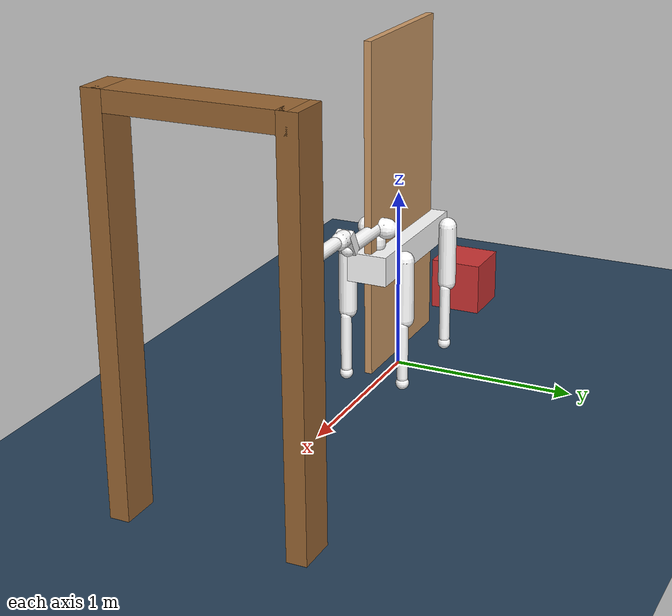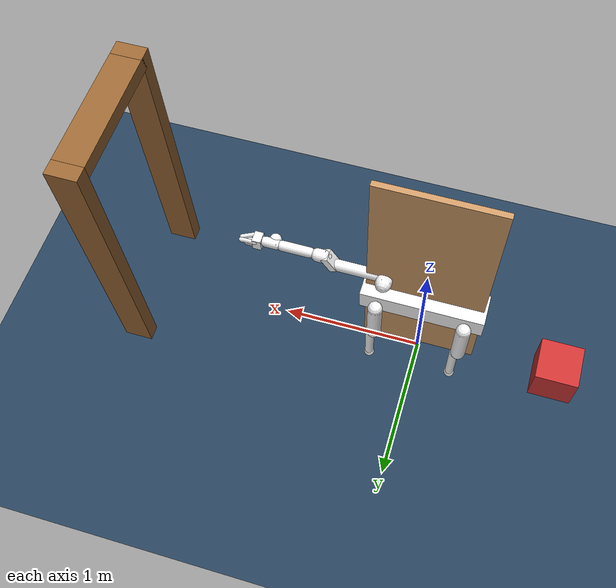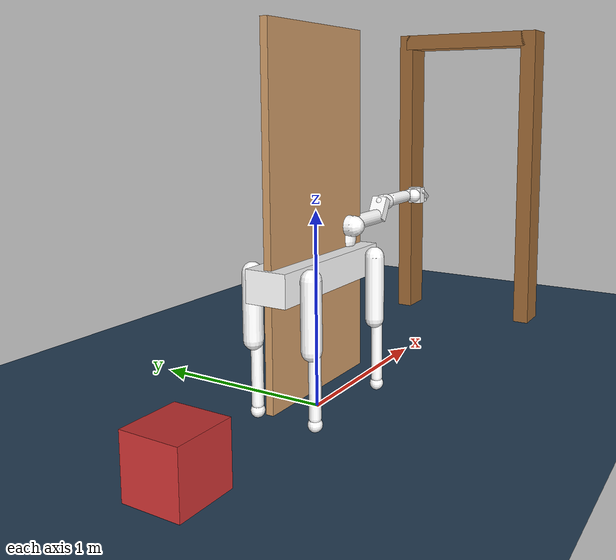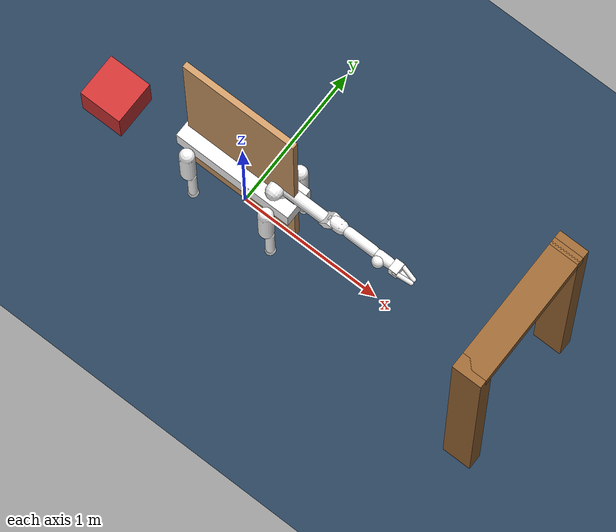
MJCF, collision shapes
<mujoco model="spot_locomotion">
<!-- Copyright (c) 2024 Boston Dynamics AI Institute LLC. All rights reserved. -->
  <include file="spot_components/params_and_default_locomotion.xml" />
  <include file="spot_components/assets_locomotion.xml" />

  <worldbody>
    <geom name="ground" type="plane" size="10 10 0.01" friction="0.8" priority="5" material="blue_grid"/>

    <!-- Door frame -->
    <geom name="door_frame_left" type="box" size="0.1 0.05 1.0" pos="2.0 -0.45 1.0" rgba="0.6 0.4 0.2 1"/>
    <geom name="door_frame_right" type="box" size="0.1 0.05 1.0" pos="2.0 0.45 1.0" rgba="0.6 0.4 0.2 1"/>
    <geom name="door_frame_top" type="box" size="0.1 0.45 0.05" pos="2.0 0 1.95" rgba="0.6 0.4 0.2 1"/>

    <body name="body" pos="0 0 0.7">
      <joint name="base" type="free"/>
      <inertial mass="16.70765207" pos="0 0 -0.00496172" fullinertia="0.081543792 0.549231154 0.569454373 0 0 0"/>
      <geom name="body_0_visual" class="visual" mesh="body_0_visual" material="black"/>
      <geom name="body_1_visual" class="visual" mesh="body_1_visual" material="yellow"/>
      <geom name="body" class="collision" type="box" size="0.42 0.11 0.08"/>
      <site name="site_body" pos="0 0 0.3" size="0.01"/>

      <include file="spot_components/legs_locomotion.xml" />
      <include file="spot_components/arm_locomotion.xml" />
    </body>

    <body name="door" pos="0 0 1">
      <!-- Hinge joint at the edge of the door with spring force toward closed position -->
      <joint name="door_hinge" type="hinge" pos="-0.4 0 0" axis="0 0 1"
             range="-120 120" damping="1" stiffness="5.0" springref="0"/>

      <!-- Inertial properties for the door -->
      <inertial mass="5.0" pos="0 0 0" fullinertia="0.1 1.0 1.0 0 0 0"/>

      <!-- Door geometry - positioned so rotation point is at the edge -->
      <geom name="door_panel" type="box" size="0.4 0.02 0.9"
            pos="0 0 0" rgba="0.8 0.6 0.4 1"/>

    </body>

    <!-- Small pushable box -->
    <body name="box" pos="-1.0 0 0.15">
      <joint name="box_free" type="free"/>
      <inertial mass="2.0" pos="0 0 0" fullinertia="0.05 0.05 0.05 0 0 0"/>
      <geom name="box_geom" type="box" size="0.15 0.15 0.15" rgba="0.8 0.2 0.2 1"/>
    </body>

  </worldbody>

  <include file="spot_components/actuators_sensors_position_control.xml" />
  <include file="spot_components/contact.xml" />

</mujoco>

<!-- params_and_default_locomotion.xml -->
<mujoco model="spot_default">
<!-- Copyright (c) 2023 Robotics and AI Institute LLC dba RAI Institute. All rights reserved. -->

  <compiler angle="radian" assetdir="../../../meshes/spot/" autolimits="true"/>

  <option timestep="0.01" solver="Newton" integrator="implicitfast" density="1">
    <!-- iterations="5" ls_iterations="10" -->
  </option>

  <default>
    <default class="visual">
      <geom type="mesh" contype="0" conaffinity="0" group="2"/>
    </default>
    <default class="collision">
      <geom group="3" friction="0.15" priority="4" rgba="1 1 1 1">
      </geom>
    </default>
    <default class="corner_contact">
      <geom type="sphere" size="1e-7" friction="0.5" priority="3"/>
    </default>

    <default class="base">
      <joint damping="30" range="-3 3"/>
      <position kp="300" ctrlrange="-3 3" forcerange="-1000 1000"/>
    </default>
    <!-- The arm damping is higher than the damping gains in spot-sim, because actual joint damping is unknown -->
    <default class="arm">
      <default class="arm_sh0">
        <joint damping="51.0" range="-2.61799387799149441136 3.14159265358979311599"/>
        <position kp="120" ctrlrange="-2.61799387799149441136 3.14159265358979311599" forcerange="-90.9 90.0"/>
      </default>
      <default class="arm_sh1">
        <joint damping="76.5" range="-3.14159265358979311599 0.52359877559829881565"/>
        <position kp="120" ctrlrange="-3.14159265358979311599 0.52359877559829881565" forcerange="-181.8 181.8"/>
      </default>
      <default class="arm_el0">
        <joint damping="51.0" range="0 3.14159265358979311599"/>
        <position kp="120" ctrlrange="0 3.14159265358979311599" forcerange="-90.9 90.0"/>
      </default>
      <default class="arm_el1">
        <joint damping="10.2" range="-2.79252680319092716487 2.79252680319092716487"/>
        <position kp="120" ctrlrange="-2.79252680319092716487 2.79252680319092716487" forcerange="-30.3 30.3"/>
      </default>
      <default class="arm_wr0">
        <joint damping="10.2" range="-1.83259571459404613236 1.83259571459404613236"/>
        <position kp="120" ctrlrange="-1.83259571459404613236 1.83259571459404613236" forcerange="-30.9 30.0"/>
      </default>
      <default class="arm_wr1">
        <joint damping="10.2" range="-2.87979326579064354163 2.87979326579064354163"/>
        <position kp="120" ctrlrange="-2.87979326579064354163 2.87979326579064354163" forcerange="-30.9 30.0"/>
      </default>
      <default class="arm_f1x">
        <joint damping="1.6" range="-1.57 0"/>
        <position kp="16.0" ctrlrange="-1.57 0" forcerange="-15.32 15.32"/>
      </default>
    </default>

    <!-- TODO find correct value for actuators -->
    <default class="leg">
      <default class="hip_x">
        <joint range="-0.785398 0.785398"/>
        <position kp="60" kv="1.5" ctrlrange="-0.785398 0.785398" forcerange="-45 45"/>
      </default>
      <default class="hip_y">
        <joint range="-0.898845 2.29511"/>
        <position kp="60" kv="1.5" ctrlrange="-0.898845 2.29511" forcerange="-45 45"/>
      </default>
      <default class="knee">
        <joint range="-2.7929 -0.2471"/>
        <position kp="60" kv="1.5" ctrlrange="-2.7929 -0.2471" forcerange="-115 115"/>
      </default>
    </default>

  </default>
</mujoco>

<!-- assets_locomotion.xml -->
<mujoco model="spot_assets">
<!-- Copyright (c) 2023 Robotics and AI Institute LLC dba RAI Institute. All rights reserved. -->
  <asset>
    <texture name="blue_grid" type="2d" builtin="checker" rgb1="0.2 0.3 0.4" rgb2="0.1 0.2 0.3" width="300" height="300" mark="edge" markrgb="0.8 0.8 0.8"/>
    <material name="blue_grid" texture="blue_grid" texrepeat="5 5" texuniform="true" reflectance=".2"/>

    <material name="black" rgba="0.2 0.2 0.2 1"/>
    <material name="yellow" rgba="1 0.8 0.03 1"/>
    <texture name="bdai_texture" type="2d" file="../../meshes/spot/bdaii_spot_wrap.png"/>
    <material name="bdai" texture="bdai_texture" specular="1" shininess="11"/>
    <material name="object" rgba=".7 .5 .3 1"/>

    <texture name="chess_texture" type="2d" builtin="checker" width="1024" height="1024" rgb1="1.0 0.27 0.1" rgb2="1.0 0.84 0.0"/>
    <material name="chess_material" texture="chess_texture"/>

    <mesh name="body" file="../../meshes/spot/base/collision/body_collision.obj"/>

    <mesh name="left_upper_leg_collision" file="../../meshes/spot/base/collision/left_upper_leg_collision.obj"/>
    <mesh name="left_lower_leg_collision" file="../../meshes/spot/base/collision/left_lower_leg_collision.obj"/>
    <mesh name="right_upper_leg_collision" file="../../meshes/spot/base/collision/right_upper_leg_collision.obj"/>
    <mesh name="right_lower_leg_collision" file="../../meshes/spot/base/collision/right_lower_leg_collision.obj"/>

    <mesh name="arm_link_sh0_base" file="../../meshes/spot/arm/collision/arm_link_sh0_base.obj"/>
    <mesh name="arm_link_sh0_left_motor" file="../../meshes/spot/arm/collision/arm_link_sh0_left_motor.obj"/>
    <mesh name="arm_link_sh0_right_motor" file="../../meshes/spot/arm/collision/arm_link_sh0_right_motor.obj"/>
    <mesh name="arm_link_sh1" file="../../meshes/spot/arm/collision/arm_link_sh1.obj"/>
    <mesh name="arm_link_el0" file="../../meshes/spot/arm/collision/arm_link_el0.obj"/>
    <mesh name="arm_link_el1" file="../../meshes/spot/arm/collision/arm_link_el1_main.obj"/>
    <mesh name="arm_link_el1_main" file="../../meshes/spot/arm/collision/arm_link_el1_main.obj"/>
    <mesh name="arm_link_el1_lip" file="../../meshes/spot/arm/collision/arm_link_el1_lip.obj"/>
    <mesh name="arm_link_wr0" file="../../meshes/spot/arm/collision/arm_link_wr0.obj"/>
    <mesh name="arm_link_wr1" file="../../meshes/spot/arm/collision/arm_link_wr1.obj"/>

    <mesh name="left_hinge" file="../../meshes/spot/gripper/collision/left_hinge.obj"/>
    <mesh name="left_finger" file="../../meshes/spot/gripper/collision/left_finger.obj"/>
    <mesh name="left_tooth" file="../../meshes/spot/gripper/collision/left_tooth.obj"/>
    <mesh name="right_hinge" file="../../meshes/spot/gripper/collision/right_hinge.obj"/>
    <mesh name="right_finger" file="../../meshes/spot/gripper/collision/right_finger.obj"/>
    <mesh name="right_tooth" file="../../meshes/spot/gripper/collision/right_tooth.obj"/>
    <mesh name="front_jaw" file="../../meshes/spot/gripper/collision/front_jaw.obj"/>
    <mesh name="middle_jaw" file="../../meshes/spot/gripper/collision/middle_jaw.obj"/>
    <mesh name="jaw_tooth" file="../../meshes/spot/gripper/collision/jaw_tooth.obj"/>

    <mesh name="body_0_visual" file="../../meshes/spot/base/visual/body_0.obj"/>
    <mesh name="body_1_visual" file="../../meshes/spot/base/visual/body_1.obj"/>

    <mesh name="front_left_hip_visual" file="../../meshes/spot/base/visual/front_left_hip.obj"/>
    <mesh name="front_left_lower_leg_visual" file="../../meshes/spot/base/visual/front_left_lower_leg.obj"/>
    <mesh name="front_left_upper_leg_0_visual" file="../../meshes/spot/base/visual/front_left_upper_leg_0.obj"/>
    <mesh name="front_left_upper_leg_1_visual" file="../../meshes/spot/base/visual/front_left_upper_leg_1.obj"/>

    <mesh name="front_right_hip_visual" file="../../meshes/spot/base/visual/front_right_hip.obj"/>
    <mesh name="front_right_lower_leg_visual" file="../../meshes/spot/base/visual/front_right_lower_leg.obj"/>
    <mesh name="front_right_upper_leg_0_visual" file="../../meshes/spot/base/visual/front_right_upper_leg_0.obj"/>
    <mesh name="front_right_upper_leg_1_visual" file="../../meshes/spot/base/visual/front_right_upper_leg_1.obj"/>

    <mesh name="rear_left_hip_visual" file="../../meshes/spot/base/visual/rear_left_hip.obj"/>
    <mesh name="rear_left_lower_leg_visual" file="../../meshes/spot/base/visual/rear_left_lower_leg.obj"/>
    <mesh name="rear_left_upper_leg_0_visual" file="../../meshes/spot/base/visual/rear_left_upper_leg_0.obj"/>
    <mesh name="rear_left_upper_leg_1_visual" file="../../meshes/spot/base/visual/rear_left_upper_leg_1.obj"/>

    <mesh name="rear_right_hip_visual" file="../../meshes/spot/base/visual/rear_right_hip.obj"/>
    <mesh name="rear_right_lower_leg_visual" file="../../meshes/spot/base/visual/rear_right_lower_leg.obj"/>
    <mesh name="rear_right_upper_leg_0_visual" file="../../meshes/spot/base/visual/rear_right_upper_leg_0.obj"/>
    <mesh name="rear_right_upper_leg_1_visual" file="../../meshes/spot/base/visual/rear_right_upper_leg_1.obj"/>

    <mesh name="arm_link_sh0_visual" file="../../meshes/spot/arm/visual/arm_link_sh0.obj"/>
    <mesh name="arm_link_sh1_0_visual" file="../../meshes/spot/arm/visual/arm_link_sh1_0.obj"/>
    <mesh name="arm_link_sh1_1_visual" file="../../meshes/spot/arm/visual/arm_link_sh1_1.obj"/>
    <mesh name="arm_link_el0_visual" file="../../meshes/spot/arm/visual/arm_link_el0.obj"/>
    <mesh name="arm_link_el1_0_visual" file="../../meshes/spot/arm/visual/arm_link_el1_0.obj"/>
    <mesh name="arm_link_el1_1_visual" file="../../meshes/spot/arm/visual/arm_link_el1_1.obj"/>
    <mesh name="arm_link_wr0_0_visual" file="../../meshes/spot/arm/visual/arm_link_wr0_0.obj"/>
    <mesh name="arm_link_wr0_1_visual" file="../../meshes/spot/arm/visual/arm_link_wr0_1.obj"/>
    <mesh name="arm_link_wr1_0_visual" file="../../meshes/spot/arm/visual/arm_link_wr1_0.obj"/>
    <mesh name="arm_link_wr1_1_visual" file="../../meshes/spot/arm/visual/arm_link_wr1_1.obj"/>
    <mesh name="arm_link_fngr_0_visual" file="../../meshes/spot/gripper/visual/arm_link_fngr_0.obj"/>
    <mesh name="arm_link_fngr_1_visual" file="../../meshes/spot/gripper/visual/arm_link_fngr_1.obj"/>
  </asset>
</mujoco>

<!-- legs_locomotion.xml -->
<mujoco model="spot_legs">
<!-- Copyright (c) 2023 Robotics and AI Institute LLC dba RAI Institute. All rights reserved. -->
    <body name="front_left_hip" pos="0.29785 0.055 0">
        <inertial pos="-0.01586739 0.00855842 0.00000903" mass="1.13688339" fullinertia="0.00122166 0.00158957 0.00172903 -0.00017754 0.00000043 -0.00000049"/>
        <joint name="joint_front_left_hip_x" class="hip_x" pos="0 0 0" axis="1 0 0" range="-0.785398 0.785398"/>
        <geom name="front_left_hip_visual" class="visual" mesh="front_left_hip_visual" material="black"/>
        <body name="front_left_upper_leg" pos="0 0.110945 0">
            <inertial pos="0.00214442 -0.01110184 -0.07881204" mass="2.25620359" fullinertia="0.02692501 0.02583907 0.00318737 -0.00008782 0.00054873 0.00207146"/>
            <joint name="joint_front_left_hip_y" class="hip_y" pos="0 0 0" axis="0 1 0" range="-0.898845 2.295108"/>
            <geom name="front_left_upper_leg_0_visual" class="visual" mesh="front_left_upper_leg_0_visual" material="yellow"/>
            <geom name="front_left_upper_leg_1_visual" class="visual" mesh="front_left_upper_leg_1_visual" material="black"/>
            <geom name="front_left_upper_leg_main" class="collision" type="capsule" size="0.05 0.165" pos="0 0 -0.13"/>
            <body name="front_left_lower_leg" pos="0.025 0 -0.3205">
                <inertial pos="0.00597360 0.0 -0.17466427" mass="0.33" fullinertia="0.00701356 0.00709946 0.00014529 0 0.00006600 0"/>
                <joint name="joint_front_left_knee" class="knee" pos="0 0 0" axis="0 1 0" range="-2.7929 -0.2471"/>
                <geom name="front_left_lower_leg_visual" class="visual" mesh="front_left_lower_leg_visual" material="black"/>
                <geom name="front_left_lower_leg_main" class="collision" type="capsule" size="0.03 0.15" pos="0 0 -0.155"/>
                <geom name="front_left_foot" class="collision" type="sphere" size="0.036" pos="0 0 -0.3365"/>
                <site name="site_front_left" pos="0 0 -0.3365" size="0.01"/>
            </body>
        </body>
    </body>

    <body name="front_right_hip" pos="0.29785 -0.055 0">
        <inertial pos="-0.01586739 -0.00855842 0.00000903" mass="1.13688339" fullinertia="0.00122166 0.00158957 0.00172903 0.00017754 0.00000043 0.00000049"/>
        <joint name="joint_front_right_hip_x" class="hip_x" pos="0 0 0" axis="1 0 0" range="-0.785398 0.785398"/>
        <geom name="front_right_hip_visual" class="visual" mesh="front_right_hip_visual" material="black"/>
        <body name="front_right_upper_leg" pos="0 -0.110945 0">
            <inertial pos="0.00214442 0.01110184 -0.07881204" mass="2.25620359" fullinertia="0.02692501 0.02583907 0.00318737 0.00008782 0.00054873 -0.00207146"/>
            <joint name="joint_front_right_hip_y" class="hip_y" pos="0 0 0" axis="0 1 0" range="-0.898845 2.295108"/>
            <geom name="front_right_upper_leg_0_visual" class="visual" mesh="front_right_upper_leg_0_visual" material="yellow"/>
            <geom name="front_right_upper_leg_1_visual" class="visual" mesh="front_right_upper_leg_1_visual" material="black"/>
            <geom name="front_right_upper_leg_main" class="collision" type="capsule" size="0.05 0.165" pos="0 0 -0.13"/>
            <body name="front_right_lower_leg" pos="0.025 0 -0.3205">
                <inertial pos="0.00597360 0.0 -0.17466427" mass="0.33" fullinertia="0.00701356 0.00709946 0.00014529 0 0.00006600 0"/>
                <joint name="joint_front_right_knee" class="knee" pos="0 0 0" axis="0 1 0" range="-2.7929 -0.2471"/>
                <geom name="front_right_lower_leg_visual" class="visual" mesh="front_right_lower_leg_visual" material="black"/>
                <geom name="front_right_lower_leg_main" class="collision" type="capsule" size="0.03 0.15" pos="0 0 -0.155"/>
                <geom name="front_right_foot" class="collision" type="sphere" size="0.036" pos="0 0 -0.3365"/>
                <site name="site_front_right" pos="0 0 -0.3365" size="0.01"/>
            </body>
        </body>
    </body>

    <body name="rear_left_hip" pos="-0.29785 0.055 0">
        <inertial pos="0.01586739 0.00855842 0.00000903" mass="1.13688339" fullinertia="0.00122166 0.00158957 0.00172903 0.00017754 -0.00000043 -0.00000049"/>
        <joint name="joint_rear_left_hip_x" class="hip_x" pos="0 0 0" axis="1 0 0" range="-0.785398 0.785398"/>
        <geom name="rear_left_hip_visual" class="visual" mesh="rear_left_hip_visual" material="black"/>
        <body name="rear_left_upper_leg" pos="0 0.110945 0">
            <inertial pos="0.00214442 -0.01110184 -0.07881204" mass="2.25620359" fullinertia="0.02692501 0.02583907 0.00318737 -0.00008782 0.00054873 0.00207146"/>
            <joint name="joint_rear_left_hip_y" class="hip_y" pos="0 0 0" axis="0 1 0" range="-0.898845 2.295108"/>
            <geom name="rear_left_upper_leg_0_visual" class="visual" mesh="rear_left_upper_leg_0_visual" material="yellow"/>
            <geom name="rear_left_upper_leg_1_visual" class="visual" mesh="rear_left_upper_leg_1_visual" material="black"/>
            <geom name="rear_left_upper_leg_main" class="collision" type="capsule" size="0.05 0.165" pos="0 0 -0.13"/>
            <body name="rear_left_lower_leg" pos="0.025 0 -0.3205">
                <inertial pos="0.00597360 0.0 -0.17466427" mass="0.33" fullinertia="0.00701356 0.00709946 0.00014529 0 0.00006600 0"/>
                <joint name="joint_rear_left_knee" class="knee" pos="0 0 0" axis="0 1 0" range="-2.7929 -0.2471"/>
                <geom name="rear_left_lower_leg_visual" class="visual" mesh="rear_left_lower_leg_visual" material="black"/>
                <geom name="rear_left_lower_leg_main" class="collision" type="capsule" size="0.03 0.15" pos="0 0 -0.155"/>
                <geom name="rear_left_foot" class="collision" type="sphere" size="0.036" pos="0 0 -0.3365"/>
                <site name="site_rear_left" pos="0 0 -0.3365" size="0.01"/>
            </body>
        </body>
    </body>

    <body name="rear_right_hip" pos="-0.29785 -0.055 0">
        <inertial pos="0.01586739 -0.00855842 0.00000903" mass="1.13688339" fullinertia="0.00122166 0.00158957 0.00172903 -0.00017754 -0.00000043 0.00000049"/>
        <joint name="joint_rear_right_hip_x" class="hip_x" pos="0 0 0" axis="1 0 0" range="-0.785398 0.785398"/>
        <geom name="rear_right_hip_visual" class="visual" mesh="rear_right_hip_visual" material="black"/>
        <body name="rear_right_upper_leg" pos="0 -0.110945 0">
            <inertial pos="0.00214442 0.01110184 -0.07881204" mass="2.25620359" fullinertia="0.02692501 0.02583907 0.00318737 0.00008782 0.00054873 -0.00207146"/>
            <joint name="joint_rear_right_hip_y" class="hip_y" pos="0 0 0" axis="0 1 0" range="-0.898845 2.295108"/>
            <geom name="rear_right_upper_leg_0_visual" class="visual" mesh="rear_right_upper_leg_0_visual" material="yellow"/>
            <geom name="rear_right_upper_leg_1_visual" class="visual" mesh="rear_right_upper_leg_1_visual" material="black"/>
            <geom name="rear_right_upper_leg_main" class="collision" type="capsule" size="0.05 0.165" pos="0 0 -0.13"/>
            <body name="rear_right_lower_leg" pos="0.025 0 -0.3205">
                <inertial pos="0.00597360 0.0 -0.17466427" mass="0.33" fullinertia="0.00701356 0.00709946 0.00014529 0 0.00006600 0"/>
                <joint name="joint_rear_right_knee" class="knee" pos="0 0 0" axis="0 1 0" range="-2.7929 -0.2471"/>
                <geom name="rear_right_lower_leg_visual" class="visual" mesh="rear_right_lower_leg_visual" material="black"/>
                <geom name="rear_right_lower_leg_main" class="collision" type="capsule" size="0.03 0.15" pos="0 0 -0.155"/>
                <geom name="rear_right_foot" class="collision" type="sphere" size="0.036" pos="0 0 -0.3365"/>
                <site name="site_rear_right" pos="0 0 -0.3365" size="0.01"/>
            </body>
        </body>
    </body>
</mujoco>

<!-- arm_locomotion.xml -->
<mujoco model="spot_arm">
<!-- Copyright (c) 2023 Robotics and AI Institute LLC dba RAI Institute. All rights reserved. -->
<!-- fullinertia="M(1,1), M(2,2), M(3,3), M(1,2), M(1,3), M(2,3)" -->
  <body name="arm_link_sh0" pos="0.292 0 0.188" gravcomp="0">
    <joint name="arm_sh0" class="arm_sh0" type="hinge" axis="0 0 1" pos="0 0 0"/>
    <inertial mass="1.904699" fullinertia="0.008896 0.004922 0.0073030 0.000005 -0.000193 0.000033" pos="-0.008399 0.000272 -0.024603"/>
    <geom name="arm_link_sh0_visual" class="visual" mesh="arm_link_sh0_visual" material="black"/>
    <geom name="arm_link_sh0_base" class="collision" type="capsule" size="0.05 0.015" pos="0 0 -0.07"/>
    <geom name="arm_link_sh0_motor" class="collision" type="capsule" size="0.055 0.055" pos="-0.015 0 0" euler="1.57079632679 0 0"/>
    <site name="site_arm_link_sh0" pos="0 0 0" size="0.01"/>

    <body name="arm_link_sh1" pos="0 0 0" gravcomp="0">
      <joint name="arm_sh1" class="arm_sh1" type="hinge" axis="0 1 0" pos="0 0 0"/>
      <inertial mass="1.85701942" fullinertia="0.00261526 0.02703868 0.02819929 -0.00040406 0.00010019 0.00000547" pos="0.08084909 -0.00167243 0.00045644" />
      <geom name="arm_link_sh1_0_visual" class="visual" mesh="arm_link_sh1_0_visual" material="yellow"/>
      <geom name="arm_link_sh1_1_visual" class="visual" mesh="arm_link_sh1_1_visual" material="black"/>
      <geom name="arm_link_sh1" class="collision" type="capsule" size="0.04 0.175" pos="0.17 0 0" euler="0 1.57079632679 0"/>
      <site name="site_arm_link_sh1" pos="0 0 0" size="0.01"/>

      <body name="arm_link_el0" pos="0.3385 0 0" gravcomp="0">
        <joint name="arm_el0" class="arm_el0" type="hinge" axis="0 1 0" pos="0 0 0"/>
        <inertial mass="0.94831958" fullinertia="0.00175909 0.00269233 0.00202854 0.00006087  0.00092380 0.00005217" pos="0.04476621 -0.00271130 0.04991363" />
        <geom name="arm_link_el0_visual" class="visual" mesh="arm_link_el0_visual" material="black"/>
        <geom name="arm_link_el0_joint" class="collision" type="box" size="0.025 0.045 0.065" pos="0.02 0 0.04" euler= "0 0.5 0"/>
        <geom name="arm_link_el0_body" class="collision" type="capsule" size="0.045 0.025" pos="0.08 0 0.07" euler="0 1.57079632679 0"/>
        <site name="site_arm_link_el0" pos="0 0 0" size="0.01"/>

        <body name="arm_link_el1" pos="0.4033 0 0.075" gravcomp="0">
          <joint name="arm_el1" class="arm_el1" type="hinge" axis="1 0 0" pos="0 0 0"/>
          <inertial mass="1.01754820" fullinertia="0.00117710 0.01649389 0.01689901 -0.00260549 0.00000156 -0.00000287" pos="-0.16867073 -0.01616121 0.00001149" />
          <geom name="arm_link_el1_0_visual" class="visual" mesh="arm_link_el1_0_visual" material="yellow"/>
          <geom name="arm_link_el1_1_visual" class="visual" mesh="arm_link_el1_1_visual" material="black"/>
          <geom name="arm_link_el1" type="capsule" class="collision" size="0.035 0.095" pos="-0.15 0 0" euler="0 1.57079632679 0"/>
          <geom name="arm_link_el1_knob" type="sphere" class="collision" size="0.04" pos="0 -0.035 0"/>
          <site name="site_arm_link_el1" pos="0 0 0" size="0.01"/>

          <body name="arm_link_wr0" pos="0 0 0" gravcomp="0">
            <joint name="arm_wr0" class="arm_wr0" type="hinge" axis="0 1 0" pos="0 0 0"/>
            <inertial mass="0.58263740" fullinertia="0.00046738 0.00044968 0.00053616 0.00006957 0.00000040 0.00000016" pos="0.00952465 -0.01144406 0.00000186" />
            <geom name="arm_link_wr0_0_visual" class="visual" mesh="arm_link_wr0_0_visual" material="yellow"/>
            <geom name="arm_link_wr0_1_visual" class="visual" mesh="arm_link_wr0_1_visual" material="black"/>
            <geom name="arm_link_wr0" class="collision" type="capsule" size="0.035 0.04" pos="0.02 0 0" euler="0 1.57079632679 0"/>
            <site name="site_arm_link_wr0" pos="0 0 0" size="0.01"/>

            <body name="arm_link_wr1" pos="0 0 0" gravcomp="0">
              <joint name="arm_wr1" class="arm_wr1" type="hinge" axis="1 0 0" pos="0 0 0"/>
              <inertial mass="0.93335298" fullinertia="0.00098836 0.00197018 0.00165791 -0.00000126 -0.00036919 -0.00000074" pos="0.09751283 0.00009265 -0.01120523" />
              <geom name="arm_link_wr1_0_visual" class="visual" mesh="arm_link_wr1_0_visual" material="yellow"/>
              <geom name="arm_link_wr1_1_visual" class="visual" mesh="arm_link_wr1_1_visual" material="black"/>
              <geom name="arm_link_wr1" class="collision" type="box" size="0.03 0.04 0.0475" pos="0.11 0 -0.01" />
              <geom name="bottom_jaw" class="collision" type="box" size="0.03 0.025 0.01" pos="0.17 0 -0.0475" />
              <geom name="front_jaw" class="collision" type="box" size="0.016 0.015 0.01" pos="0.215 0 -0.0475" />
              <geom name="front_jaw_tooth" class="collision" type="box" size="0.005 0.01 0.005" pos="0.224 0 -0.039" euler="0 1 0"/>
              <site name="site_arm_link_wr1" pos="0 0 0" size="0.01"/>

              <body name="arm_link_fngr" pos="0.11745 0.0 0.014820" gravcomp="0">
                <joint name="arm_f1x" class="arm_f1x" type="hinge" axis="0 1 0" pos="0 0 0"/>
                <inertial mass="0.22383315" fullinertia="0.00025226 0.00048453 0.00059145 -0.00000536 -0.00015067 0.00000184" pos="0.03565178 0.00067200 -0.01227516" />
                <geom name="arm_link_fngr_0_visual" class="visual" mesh="arm_link_fngr_0_visual" material="yellow"/>
                <geom name="arm_link_fngr_1_visual" class="visual" mesh="arm_link_fngr_1_visual" material="black"/>
                <geom name="left_jaw" type="capsule" class="collision" size="0.015 0.06" pos="0.057 0.023 -0.023" euler="-0.45 2.0 0"/>
                <geom name="right_jaw" type="capsule" class="collision" size="0.015 0.06" pos="0.057 -0.023 -0.023" euler="0.45 2.0 0"/>
                <site name="site_arm_link_fngr" pos="0 0 0" size="0.01"/>
              </body>
            </body>
          </body>
        </body>
      </body>
    </body>
  </body>
</mujoco>

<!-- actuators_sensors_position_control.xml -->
<mujoco model="spot_position_control">
<!-- Copyright (c) 2023 Robotics and AI Institute LLC dba RAI Institute. All rights reserved. -->
  <actuator>
    <position name="act_fl1" joint="joint_front_left_hip_x" class="hip_x"/>
    <position name="act_fl2" joint="joint_front_left_hip_y" class="hip_y"/>
    <position name="act_fl3" joint="joint_front_left_knee" class="knee"/>
    <position name="act_fr1" joint="joint_front_right_hip_x" class="hip_x"/>
    <position name="act_fr2" joint="joint_front_right_hip_y" class="hip_y"/>
    <position name="act_fr3" joint="joint_front_right_knee" class="knee"/>
    <position name="act_rl1" joint="joint_rear_left_hip_x" class="hip_x"/>
    <position name="act_rl2" joint="joint_rear_left_hip_y" class="hip_y"/>
    <position name="act_rl3" joint="joint_rear_left_knee" class="knee"/>
    <position name="act_rr1" joint="joint_rear_right_hip_x" class="hip_x"/>
    <position name="act_rr2" joint="joint_rear_right_hip_y" class="hip_y"/>
    <position name="act_rr3" joint="joint_rear_right_knee" class="knee"/>

    <position name="act_0" joint="arm_sh0" class="arm_sh0"/>
    <position name="act_1" joint="arm_sh1" class="arm_sh1"/>
    <position name="act_2" joint="arm_el0" class="arm_el0"/>
    <position name="act_3" joint="arm_el1" class="arm_el1"/>
    <position name="act_4" joint="arm_wr0" class="arm_wr0"/>
    <position name="act_5" joint="arm_wr1" class="arm_wr1"/>
    <position name="act_6" joint="arm_f1x" class="arm_f1x"/>
  </actuator>

  <sensor>
    <framepos name="trace_body" objtype="site" objname="site_body" />
    <framepos name="trace_gripper" objtype="site" objname="site_arm_link_fngr" />
  </sensor>

</mujoco>

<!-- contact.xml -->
<mujoco model="spot_contact">
<!-- Copyright (c) 2024 Robotics and AI Institute LLC dba RAI Institute. All rights reserved. -->
  <contact>
    <exclude body1="arm_link_sh0" body2="arm_link_el1"/>
    <exclude body1="arm_link_sh1" body2="arm_link_el0"/>
    <exclude body1="arm_link_sh1" body2="arm_link_el1"/>
    <exclude body1="body" body2="front_left_upper_leg"/>
    <exclude body1="body" body2="front_right_upper_leg"/>
    <exclude body1="body" body2="rear_left_upper_leg"/>
    <exclude body1="body" body2="rear_right_upper_leg"/>
    <exclude body1="arm_link_sh0" body2="front_left_upper_leg"/>
    <exclude body1="arm_link_sh0" body2="front_right_upper_leg"/>
    <exclude body1="arm_link_sh0" body2="rear_left_upper_leg"/>
    <exclude body1="arm_link_sh0" body2="rear_right_upper_leg"/>
  </contact>
</mujoco>
